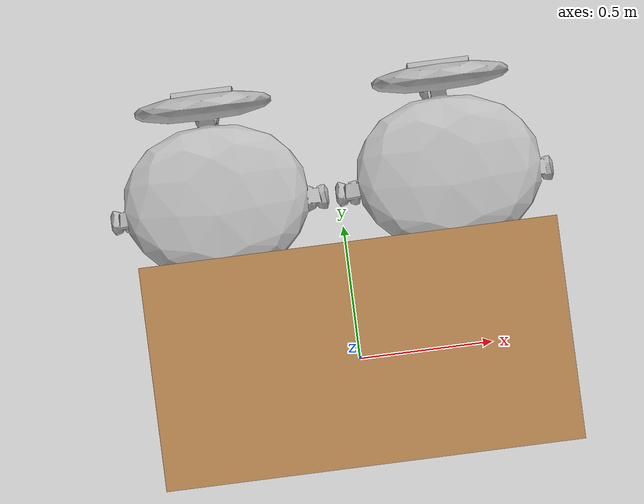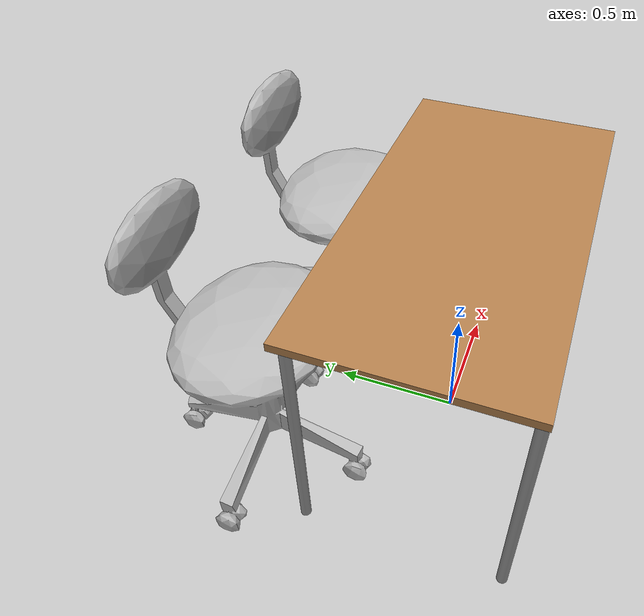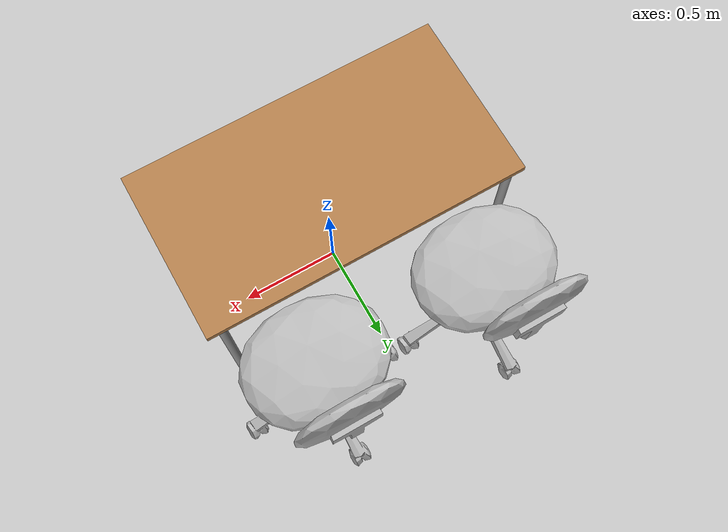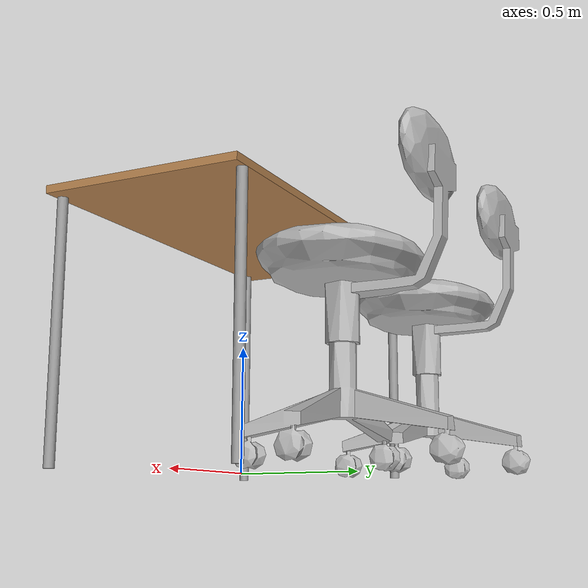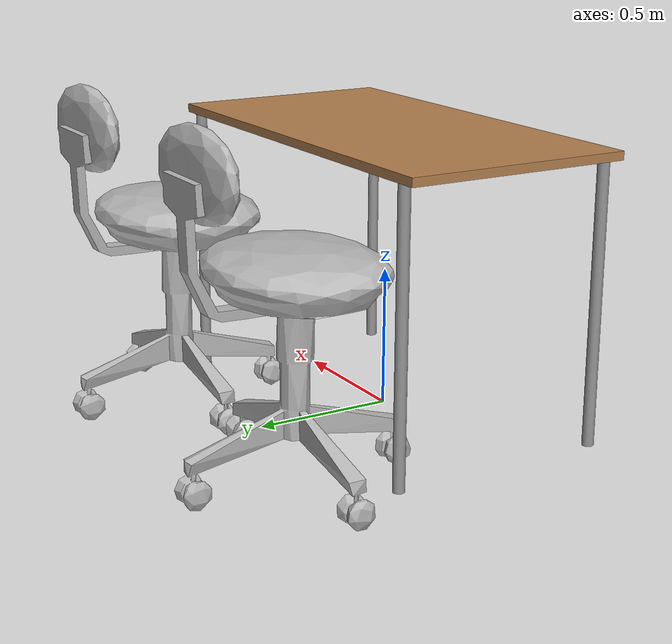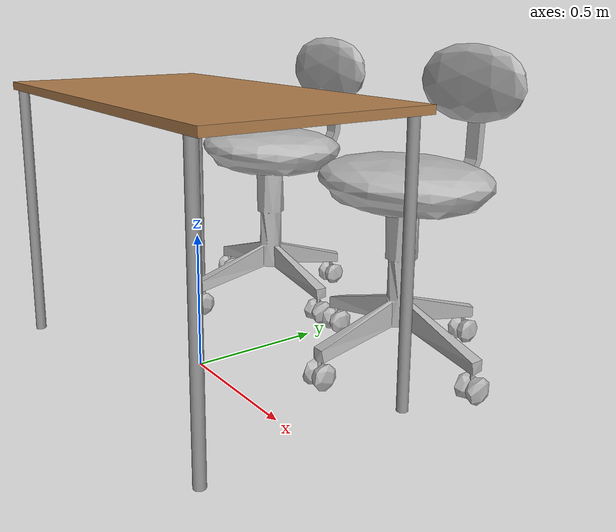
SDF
<?xml version="1.0" ?>
<sdf version="1.5">
  <model name="table_n_twoChair">
      <pose>0 0 0 0 0 0 0 </pose>
      <model name='table'>
        <pose>0 0 0 0 0 0 0 </pose>
        <static>1</static>
        <include>
          <name>Office Table</name>
          <uri>model://table</uri>
        </include>
      </model>
      <model name='chair_1'>
        <pose>-0.45 0.62 0 0 -0 0</pose>
        <static>1</static>
        <include>
          <name>Chair</name>
          <uri>model://chair</uri>
        </include>
      </model>
      <model name='chair_2'>
        <pose>0.4 0.62 0 0 -0 0</pose>
        <static>1</static>
        <include>
          <name>Chair</name>
          <uri>model://chair</uri>
        </include>
      </model>
    </model>
</sdf>

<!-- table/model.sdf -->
<sdf version="1.5">
  <model name="table">
    <static>true</static>
    <link name="link">
      <collision name="surface">
        <pose>0 0 1.0 0 0 0</pose>
        <geometry>
          <box>
            <size>1.5 0.8 0.03</size>
          </box>
        </geometry>
        <surface>
          <friction>
            <ode>
              <mu>0.6</mu>
              <mu2>0.6</mu2>
            </ode>
          </friction>
        </surface>
      </collision>
      <visual name="visual1">
        <pose>0 0 1.0 0 0 0</pose>
        <geometry>
          <box>
            <size>1.5 0.8 0.03</size>
          </box>
        </geometry>
        <material>
          <script>
            <uri>model://media/materials/scripts/gazebo.material</uri>
            <name>Gazebo/Wood</name>
          </script>
        </material>
      </visual>
      <collision name="front_left_leg">
        <pose>0.68 0.38 0.5 0 0 0</pose>
        <geometry>
          <cylinder>
            <radius>0.02</radius>
            <length>1.0</length>
          </cylinder>
        </geometry>
      </collision>
      <visual name="front_left_leg">
        <pose>0.68 0.38 0.5 0 0 0</pose>
        <geometry>
          <cylinder>
            <radius>0.02</radius>
            <length>1.0</length>
          </cylinder>
        </geometry>
        <material>
          <script>
            <uri>model://media/materials/scripts/gazebo.material</uri>
            <name>Gazebo/Grey</name>
          </script>
        </material>
      </visual>
      <collision name="front_right_leg">
        <pose>0.68 -0.38 0.5 0 0 0</pose>
        <geometry>
          <cylinder>
            <radius>0.02</radius>
            <length>1.0</length>
          </cylinder>
        </geometry>
      </collision>
      <visual name="front_right_leg">
        <pose>0.68 -0.38 0.5 0 0 0</pose>
        <geometry>
          <cylinder>
            <radius>0.02</radius>
            <length>1.0</length>
          </cylinder>
        </geometry>
        <material>
          <script>
            <uri>model://media/materials/scripts/gazebo.material</uri>
            <name>Gazebo/Grey</name>
          </script>
        </material>
      </visual>
      <collision name="back_right_leg">
        <pose>-0.68 -0.38 0.5 0 0 0</pose>
        <geometry>
          <cylinder>
            <radius>0.02</radius>
            <length>1.0</length>
          </cylinder>
        </geometry>
      </collision>
      <visual name="back_right_leg">
        <pose>-0.68 -0.38 0.5 0 0 0</pose>
        <geometry>
          <cylinder>
            <radius>0.02</radius>
            <length>1.0</length>
          </cylinder>
        </geometry>
        <material>
          <script>
            <uri>model://media/materials/scripts/gazebo.material</uri>
            <name>Gazebo/Grey</name>
          </script>
        </material>
      </visual>
      <collision name="back_left_leg">
        <pose>-0.68 0.38 0.5 0 0 0</pose>
        <geometry>
          <cylinder>
            <radius>0.02</radius>
            <length>1.0</length>
          </cylinder>
        </geometry>
      </collision>
      <visual name="back_left_leg">
        <pose>-0.68 0.38 0.5 0 0 0</pose>
        <geometry>
          <cylinder>
            <radius>0.02</radius>
            <length>1.0</length>
          </cylinder>
        </geometry>
        <material>
          <script>
            <uri>model://media/materials/scripts/gazebo.material</uri>
            <name>Gazebo/Grey</name>
          </script>
        </material>
      </visual>
    </link>
  </model>
</sdf>

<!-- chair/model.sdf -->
<sdf version="1.5">
  <model name="chair">
   <static>true</static>
    <link name="body">
      <pose>0 0 0 0 0 0</pose>

      <visual name="visual">
        <geometry>
          <mesh>
            <uri>model://chair/meshes/chair.dae</uri>
          </mesh>
        </geometry>
      </visual>

      <collision name="collision">
        <geometry>
          <mesh>
            <uri>model://chair/meshes/chair.dae</uri>
          </mesh>
        </geometry>
      </collision>

    </link>
  </model>
</sdf>
